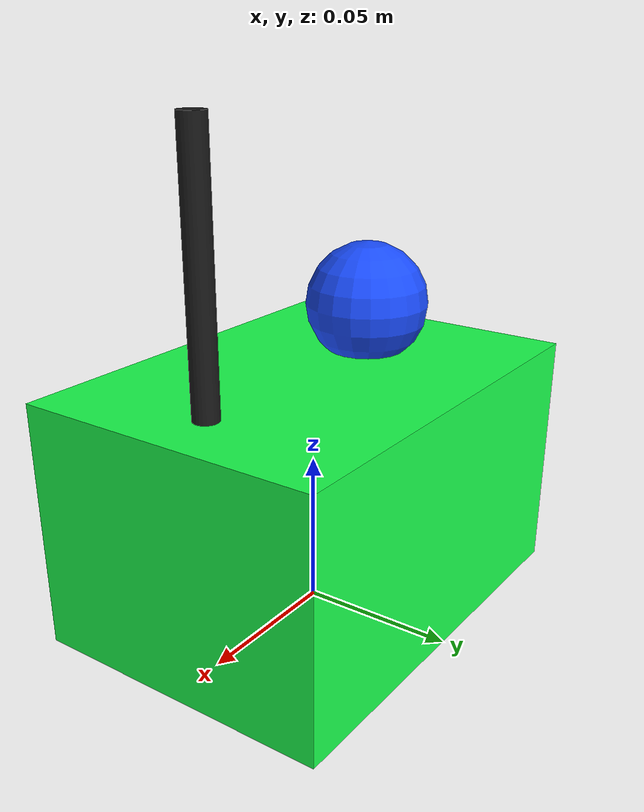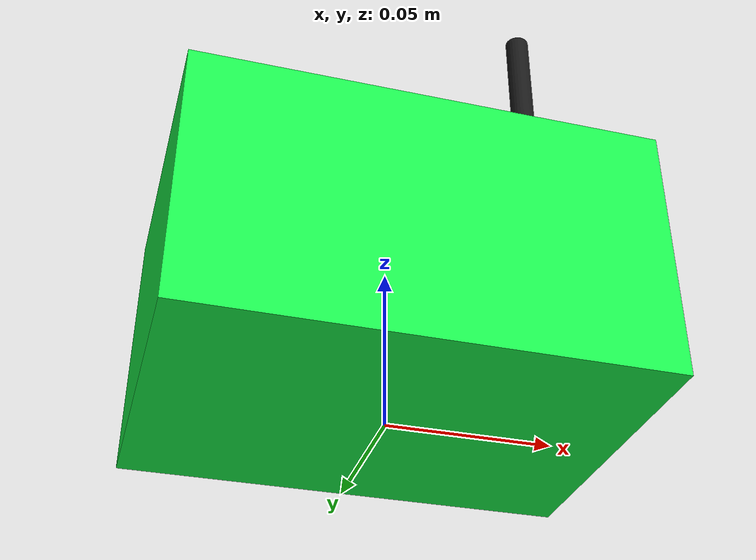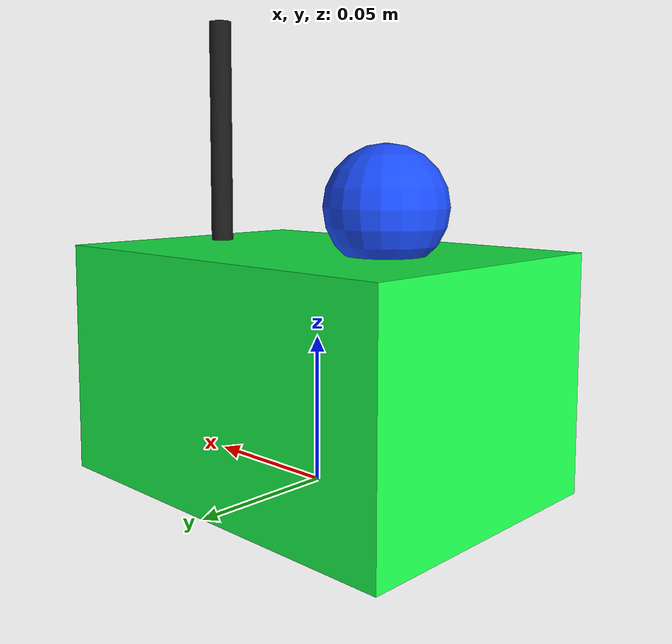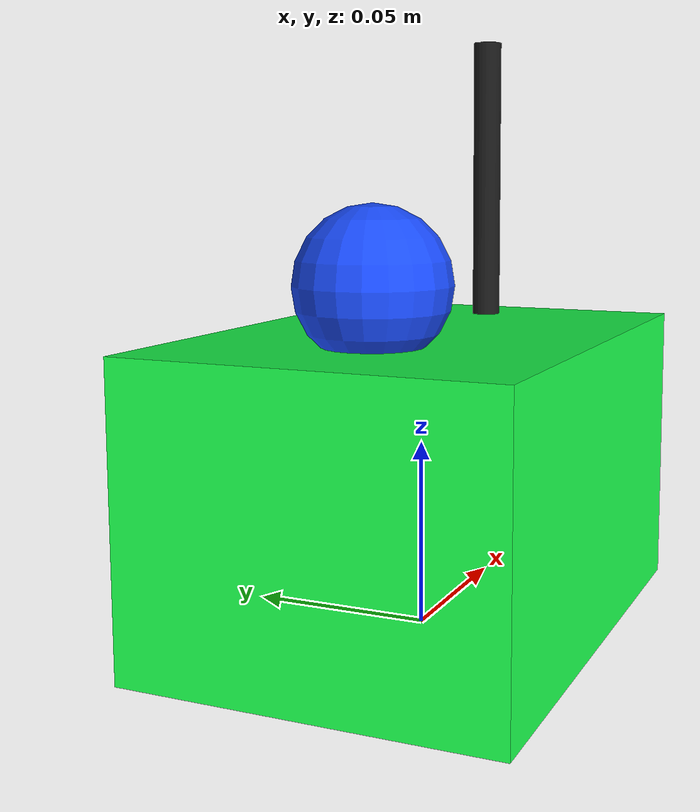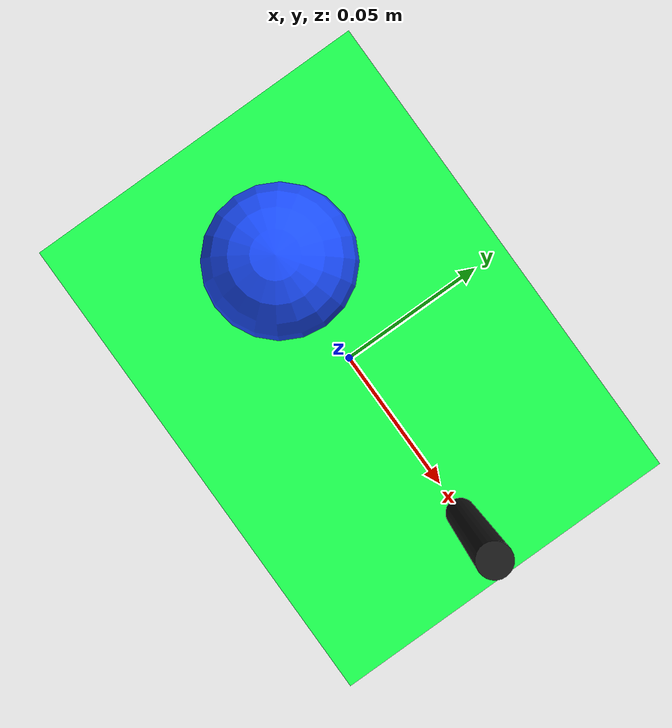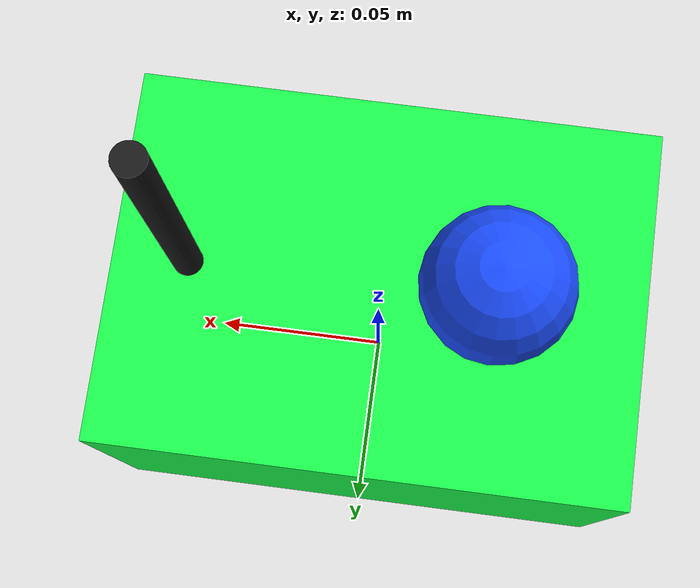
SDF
<?xml version="1.0"?>
<sdf version="1.6">
  <model name="lora_beacon">
    <static>true</static>
    <link name="link">
      <!-- main body: bright-green box resting on the ground -->
      <visual name="visual">
        <pose>0 0 0.04 0 0 0</pose>
        <geometry><box><size>0.14 0.10 0.08</size></box></geometry>
        <material>
          <ambient>0.0 0.9 0.2 1</ambient>
          <diffuse>0.1 1.0 0.3 1</diffuse>
          <emissive>0.0 0.8 0.2 1</emissive>
        </material>
      </visual>

      <!-- short antenna (top at 0.16 m) -->
      <visual name="antenna">
        <pose>0.05 0 0.12 0 0 0</pose>
        <geometry><cylinder><radius>0.004</radius><length>0.08</length></cylinder></geometry>
        <material>
          <ambient>0.1 0.1 0.1 1</ambient><diffuse>0.1 0.1 0.1 1</diffuse>
        </material>
      </visual>

      <!-- glowing BLUE status LED on top -->
      <visual name="led">
        <pose>-0.03 0 0.095 0 0 0</pose>
        <geometry><sphere><radius>0.02</radius></sphere></geometry>
        <material>
          <ambient>0.1 0.3 1.0 1</ambient>
          <diffuse>0.1 0.3 1.0 1</diffuse>
          <emissive>0.0 0.2 1.0 1</emissive>
        </material>
      </visual>
    </link>
  </model>
</sdf>
